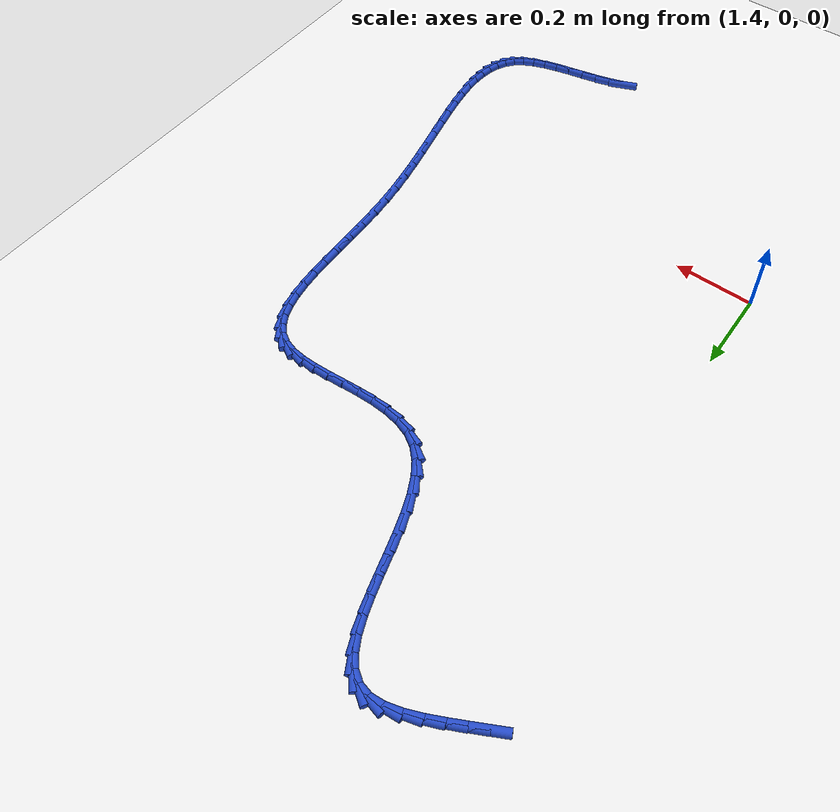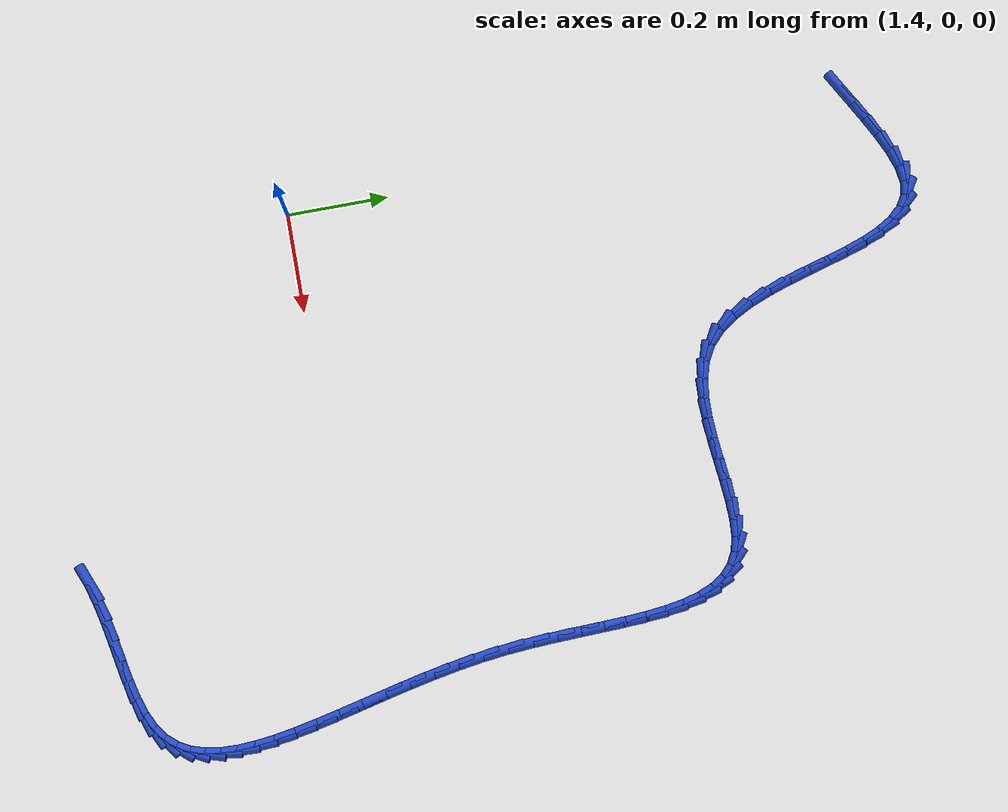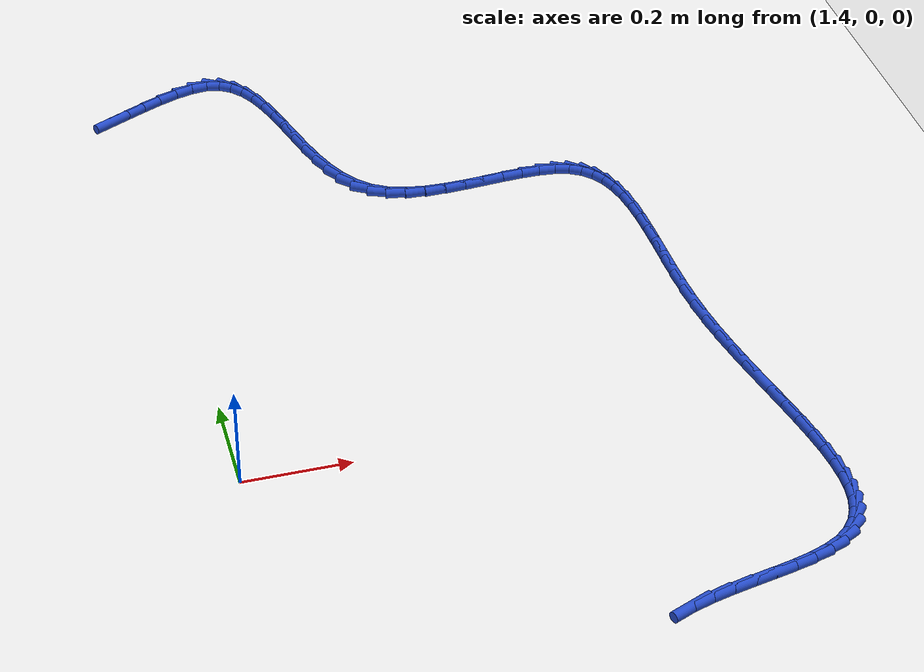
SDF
<sdf version="1.6">
 <world name="default">
  <model name="ground_plane">
   <static>1</static>
   <link name="link">
    <collision name="collision">
     <geometry><plane><normal>0 0 1</normal><size>100 100</size></plane></geometry>
     <surface><friction><ode><mu>100</mu><mu2>50</mu2></ode></friction></surface>
    </collision>
    <visual name="visual">
     <cast_shadows>0</cast_shadows>
     <geometry><plane><normal>0 0 1</normal><size>100 100</size></plane></geometry>
     <material>
      <script><uri>file://media/materials/scripts/gazebo.material</uri><name>Gazebo/WhiteGlow</name></script>
     </material>
    </visual>
   </link>
  </model>
  <model name="line">
   <link name="link_55">
    <pose>1.3496479229003844 1.1246117016467234 0.01 0 1.57 0.47023471055390703</pose>
    <collision name="collision">
     <geometry><cylinder><radius>0.01</radius><length>0.08</length></cylinder></geometry>
    </collision>
    <visual name="visual">
     <material>
      <script><name>Gazebo/Blue</name><uri>file://media/materials/scripts/gazebo.material</uri></script>
     </material>
     <geometry><cylinder><radius>0.01</radius><length>0.08</length></cylinder></geometry>
    </visual>
   </link>
   <link name="link_56">
    <pose>1.3841932074227694 1.1421697295894424 0.01 0 1.57 0.4641100833375244</pose>
    <collision name="collision">
     <geometry><cylinder><radius>0.01</radius><length>0.08</length></cylinder></geometry>
    </collision>
    <visual name="visual">
     <material>
      <script><name>Gazebo/Blue</name><uri>file://media/materials/scripts/gazebo.material</uri></script>
     </material>
     <geometry><cylinder><radius>0.01</radius><length>0.08</length></cylinder></geometry>
    </visual>
   </link>
   <link name="link_57">
    <pose>1.4198160723473592 1.160001760142285 0.01 0 1.57 0.4411880590642523</pose>
    <collision name="collision">
     <geometry><cylinder><radius>0.01</radius><length>0.08</length></cylinder></geometry>
    </collision>
    <visual name="visual">
     <material>
      <script><name>Gazebo/Blue</name><uri>file://media/materials/scripts/gazebo.material</uri></script>
     </material>
     <geometry><cylinder><radius>0.01</radius><length>0.08</length></cylinder></geometry>
    </visual>
   </link>
   <link name="link_58">
    <pose>1.4567373012334133 1.177437172259663 0.01 0 1.57 0.38779277143367824</pose>
    <collision name="collision">
     <geometry><cylinder><radius>0.01</radius><length>0.08</length></cylinder></geometry>
    </collision>
    <visual name="visual">
     <material>
      <script><name>Gazebo/Blue</name><uri>file://media/materials/scripts/gazebo.material</uri></script>
     </material>
     <geometry><cylinder><radius>0.01</radius><length>0.08</length></cylinder></geometry>
    </visual>
   </link>
   <link name="link_59">
    <pose>1.4939364080450266 1.1926321545787328 0.01 0 1.57 0.2858420872469127</pose>
    <collision name="collision">
     <geometry><cylinder><radius>0.01</radius><length>0.08</length></cylinder></geometry>
    </collision>
    <visual name="visual">
     <material>
      <script><name>Gazebo/Blue</name><uri>file://media/materials/scripts/gazebo.material</uri></script>
     </material>
     <geometry><cylinder><radius>0.01</radius><length>0.08</length></cylinder></geometry>
    </visual>
   </link>
   <link name="link_60">
    <pose>1.5297840384328139 1.2031674217117962 0.01 0 1.57 0.10466865321659184</pose>
    <collision name="collision">
     <geometry><cylinder><radius>0.01</radius><length>0.08</length></cylinder></geometry>
    </collision>
    <visual name="visual">
     <material>
      <script><name>Gazebo/Blue</name><uri>file://media/materials/scripts/gazebo.material</uri></script>
     </material>
     <geometry><cylinder><radius>0.01</radius><length>0.08</length></cylinder></geometry>
    </visual>
   </link>
   <link name="link_61">
    <pose>1.5626466423360947 1.206619722679889 0.01 0 1.57 -0.20090752166121828</pose>
    <collision name="collision">
     <geometry><cylinder><radius>0.01</radius><length>0.08</length></cylinder></geometry>
    </collision>
    <visual name="visual">
     <material>
      <script><name>Gazebo/Blue</name><uri>file://media/materials/scripts/gazebo.material</uri></script>
     </material>
     <geometry><cylinder><radius>0.01</radius><length>0.08</length></cylinder></geometry>
    </visual>
   </link>
   <link name="link_62">
    <pose>1.5910601172253214 1.2008331758100141 0.01 0 1.57 -0.556878112638074</pose>
    <collision name="collision">
     <geometry><cylinder><radius>0.01</radius><length>0.08</length></cylinder></geometry>
    </collision>
    <visual name="visual">
     <material>
      <script><name>Gazebo/Blue</name><uri>file://media/materials/scripts/gazebo.material</uri></script>
     </material>
     <geometry><cylinder><radius>0.01</radius><length>0.08</length></cylinder></geometry>
    </visual>
   </link>
   <link name="link_63">
    <pose>1.6150020444992763 1.1859267158797964 0.01 0 1.57 -0.8454522377044399</pose>
    <collision name="collision">
     <geometry><cylinder><radius>0.01</radius><length>0.08</length></cylinder></geometry>
    </collision>
    <visual name="visual">
     <material>
      <script><name>Gazebo/Blue</name><uri>file://media/materials/scripts/gazebo.material</uri></script>
     </material>
     <geometry><cylinder><radius>0.01</radius><length>0.08</length></cylinder></geometry>
    </visual>
   </link>
   <link name="link_64">
    <pose>1.63517850366277 1.1631687664301624 0.01 0 1.57 -1.042409784000581</pose>
    <collision name="collision">
     <geometry><cylinder><radius>0.01</radius><length>0.08</length></cylinder></geometry>
    </collision>
    <visual name="visual">
     <material>
      <script><name>Gazebo/Blue</name><uri>file://media/materials/scripts/gazebo.material</uri></script>
     </material>
     <geometry><cylinder><radius>0.01</radius><length>0.08</length></cylinder></geometry>
    </visual>
   </link>
   <link name="link_65">
    <pose>1.652301194533826 1.1338366192294627 0.01 0 1.57 -1.167379028693601</pose>
    <collision name="collision">
     <geometry><cylinder><radius>0.01</radius><length>0.08</length></cylinder></geometry>
    </collision>
    <visual name="visual">
     <material>
      <script><name>Gazebo/Blue</name><uri>file://media/materials/scripts/gazebo.material</uri></script>
     </material>
     <geometry><cylinder><radius>0.01</radius><length>0.08</length></cylinder></geometry>
    </visual>
   </link>
   <link name="link_66">
    <pose>1.667081816930466 1.0992075660460463 0.01 0 1.57 -1.2428327068350764</pose>
    <collision name="collision">
     <geometry><cylinder><radius>0.01</radius><length>0.08</length></cylinder></geometry>
    </collision>
    <visual name="visual">
     <material>
      <script><name>Gazebo/Blue</name><uri>file://media/materials/scripts/gazebo.material</uri></script>
     </material>
     <geometry><cylinder><radius>0.01</radius><length>0.08</length></cylinder></geometry>
    </visual>
   </link>
   <link name="link_67">
    <pose>1.6802320706707132 1.060558898648265 0.01 0 1.57 -1.2834609056424273</pose>
    <collision name="collision">
     <geometry><cylinder><radius>0.01</radius><length>0.08</length></cylinder></geometry>
    </collision>
    <visual name="visual">
     <material>
      <script><name>Gazebo/Blue</name><uri>file://media/materials/scripts/gazebo.material</uri></script>
     </material>
     <geometry><cylinder><radius>0.01</radius><length>0.08</length></cylinder></geometry>
    </visual>
   </link>
   <link name="link_68">
    <pose>1.6924636555725903 1.0191679088044683 0.01 0 1.57 -1.2972482779270065</pose>
    <collision name="collision">
     <geometry><cylinder><radius>0.01</radius><length>0.08</length></cylinder></geometry>
    </collision>
    <visual name="visual">
     <material>
      <script><name>Gazebo/Blue</name><uri>file://media/materials/scripts/gazebo.material</uri></script>
     </material>
     <geometry><cylinder><radius>0.01</radius><length>0.08</length></cylinder></geometry>
    </visual>
   </link>
   <link name="link_69">
    <pose>1.7044882714541203 0.9763118882830061 0.01 0 1.57 -1.2875393513096767</pose>
    <collision name="collision">
     <geometry><cylinder><radius>0.01</radius><length>0.08</length></cylinder></geometry>
    </collision>
    <visual name="visual">
     <material>
      <script><name>Gazebo/Blue</name><uri>file://media/materials/scripts/gazebo.material</uri></script>
     </material>
     <geometry><cylinder><radius>0.01</radius><length>0.08</length></cylinder></geometry>
    </visual>
   </link>
   <link name="link_70">
    <pose>1.7170176181333245 0.9332681288522294 0.01 0 1.57 -1.2541806238959856</pose>
    <collision name="collision">
     <geometry><cylinder><radius>0.01</radius><length>0.08</length></cylinder></geometry>
    </collision>
    <visual name="visual">
     <material>
      <script><name>Gazebo/Blue</name><uri>file://media/materials/scripts/gazebo.material</uri></script>
     </material>
     <geometry><cylinder><radius>0.01</radius><length>0.08</length></cylinder></geometry>
    </visual>
   </link>
   <link name="link_71">
    <pose>1.7307633954282269 0.8913139222804881 0.01 0 1.57 -1.1938016632790547</pose>
    <collision name="collision">
     <geometry><cylinder><radius>0.01</radius><length>0.08</length></cylinder></geometry>
    </collision>
    <visual name="visual">
     <material>
      <script><name>Gazebo/Blue</name><uri>file://media/materials/scripts/gazebo.material</uri></script>
     </material>
     <geometry><cylinder><radius>0.01</radius><length>0.08</length></cylinder></geometry>
    </visual>
   </link>
   <link name="link_72">
    <pose>1.746437303156849 0.8517265603361323 0.01 0 1.57 -1.0995629544573708</pose>
    <collision name="collision">
     <geometry><cylinder><radius>0.01</radius><length>0.08</length></cylinder></geometry>
    </collision>
    <visual name="visual">
     <material>
      <script><name>Gazebo/Blue</name><uri>file://media/materials/scripts/gazebo.material</uri></script>
     </material>
     <geometry><cylinder><radius>0.01</radius><length>0.08</length></cylinder></geometry>
    </visual>
   </link>
   <link name="link_73">
    <pose>1.7647510411372147 0.8157833347875121 0.01 0 1.57 -0.9611526923810393</pose>
    <collision name="collision">
     <geometry><cylinder><radius>0.01</radius><length>0.08</length></cylinder></geometry>
    </collision>
    <visual name="visual">
     <material>
      <script><name>Gazebo/Blue</name><uri>file://media/materials/scripts/gazebo.material</uri></script>
     </material>
     <geometry><cylinder><radius>0.01</radius><length>0.08</length></cylinder></geometry>
    </visual>
   </link>
   <link name="link_74">
    <pose>1.7864163091873455 0.7847615374029782 0.01 0 1.57 -0.767489251983084</pose>
    <collision name="collision">
     <geometry><cylinder><radius>0.01</radius><length>0.08</length></cylinder></geometry>
    </collision>
    <visual name="visual">
     <material>
      <script><name>Gazebo/Blue</name><uri>file://media/materials/scripts/gazebo.material</uri></script>
     </material>
     <geometry><cylinder><radius>0.01</radius><length>0.08</length></cylinder></geometry>
    </visual>
   </link>
   <link name="link_75">
    <pose>1.8121448071252642 0.7599384599508806 0.01 0 1.57 -0.5262528285061314</pose>
    <collision name="collision">
     <geometry><cylinder><radius>0.01</radius><length>0.08</length></cylinder></geometry>
    </collision>
    <visual name="visual">
     <material>
      <script><name>Gazebo/Blue</name><uri>file://media/materials/scripts/gazebo.material</uri></script>
     </material>
     <geometry><cylinder><radius>0.01</radius><length>0.08</length></cylinder></geometry>
    </visual>
   </link>
   <link name="link_76">
    <pose>1.842471889548279 0.7423216262222947 0.01 0 1.57 -0.31054921585594547</pose>
    <collision name="collision">
     <geometry><cylinder><radius>0.01</radius><length>0.08</length></cylinder></geometry>
    </collision>
    <visual name="visual">
     <material>
      <script><name>Gazebo/Blue</name><uri>file://media/materials/scripts/gazebo.material</uri></script>
     </material>
     <geometry><cylinder><radius>0.01</radius><length>0.08</length></cylinder></geometry>
    </visual>
   </link>
   <link name="link_77">
    <pose>1.8768643711742834 0.7312839376423638 0.01 0 1.57 -0.1506994818354576</pose>
    <collision name="collision">
     <geometry><cylinder><radius>0.01</radius><length>0.08</length></cylinder></geometry>
    </collision>
    <visual name="visual">
     <material>
      <script><name>Gazebo/Blue</name><uri>file://media/materials/scripts/gazebo.material</uri></script>
     </material>
     <geometry><cylinder><radius>0.01</radius><length>0.08</length></cylinder></geometry>
    </visual>
   </link>
   <link name="link_78">
    <pose>1.9143887084472733 0.7255858387672719 0.01 0 1.57 -0.04023668969716423</pose>
    <collision name="collision">
     <geometry><cylinder><radius>0.01</radius><length>0.08</length></cylinder></geometry>
    </collision>
    <visual name="visual">
     <material>
      <script><name>Gazebo/Blue</name><uri>file://media/materials/scripts/gazebo.material</uri></script>
     </material>
     <geometry><cylinder><radius>0.01</radius><length>0.08</length></cylinder></geometry>
    </visual>
   </link>
   <link name="link_79">
    <pose>1.9541106531050751 0.7239866961134542 0.01 0 1.57 0.030713060975538498</pose>
    <collision name="collision">
     <geometry><cylinder><radius>0.01</radius><length>0.08</length></cylinder></geometry>
    </collision>
    <visual name="visual">
     <material>
      <script><name>Gazebo/Blue</name><uri>file://media/materials/scripts/gazebo.material</uri></script>
     </material>
     <geometry><cylinder><radius>0.01</radius><length>0.08</length></cylinder></geometry>
    </visual>
   </link>
   <link name="link_80">
    <pose>1.9950959568855162 0.7252458761973456 0.01 0 1.57 0.06952132871976674</pose>
    <collision name="collision">
     <geometry><cylinder><radius>0.01</radius><length>0.08</length></cylinder></geometry>
    </collision>
    <visual name="visual">
     <material>
      <script><name>Gazebo/Blue</name><uri>file://media/materials/scripts/gazebo.material</uri></script>
     </material>
     <geometry><cylinder><radius>0.01</radius><length>0.08</length></cylinder></geometry>
    </visual>
   </link>
   <link name="link_81">
    <pose>2.0364103715264235 0.7281227455353816 0.01 0 1.57 0.07976122567753044</pose>
    <collision name="collision">
     <geometry><cylinder><radius>0.01</radius><length>0.08</length></cylinder></geometry>
    </collision>
    <visual name="visual">
     <material>
      <script><name>Gazebo/Blue</name><uri>file://media/materials/scripts/gazebo.material</uri></script>
     </material>
     <geometry><cylinder><radius>0.01</radius><length>0.08</length></cylinder></geometry>
    </visual>
   </link>
   <link name="link_82">
    <pose>2.0771196487656236 0.731376670643997 0.01 0 1.57 0.06094953654843173</pose>
    <collision name="collision">
     <geometry><cylinder><radius>0.01</radius><length>0.08</length></cylinder></geometry>
    </collision>
    <visual name="visual">
     <material>
      <script><name>Gazebo/Blue</name><uri>file://media/materials/scripts/gazebo.material</uri></script>
     </material>
     <geometry><cylinder><radius>0.01</radius><length>0.08</length></cylinder></geometry>
    </visual>
   </link>
   <link name="link_83">
    <pose>2.116289540340944 0.7337670180396269 0.01 0 1.57 0.007797263770574063</pose>
    <collision name="collision">
     <geometry><cylinder><radius>0.01</radius><length>0.08</length></cylinder></geometry>
    </collision>
    <visual name="visual">
     <material>
      <script><name>Gazebo/Blue</name><uri>file://media/materials/scripts/gazebo.material</uri></script>
     </material>
     <geometry><cylinder><radius>0.01</radius><length>0.08</length></cylinder></geometry>
    </visual>
   </link>
   <link name="link_84">
    <pose>2.152985797990211 0.7340531542387062 0.01 0 1.57 -0.09162789334053047</pose>
    <collision name="collision">
     <geometry><cylinder><radius>0.01</radius><length>0.08</length></cylinder></geometry>
    </collision>
    <visual name="visual">
     <material>
      <script><name>Gazebo/Blue</name><uri>file://media/materials/scripts/gazebo.material</uri></script>
     </material>
     <geometry><cylinder><radius>0.01</radius><length>0.08</length></cylinder></geometry>
    </visual>
   </link>
   <link name="link_85">
    <pose>2.186274173451253 0.7309944457576701 0.01 0 1.57 -0.25818791324638857</pose>
    <collision name="collision">
     <geometry><cylinder><radius>0.01</radius><length>0.08</length></cylinder></geometry>
    </collision>
    <visual name="visual">
     <material>
      <script><name>Gazebo/Blue</name><uri>file://media/materials/scripts/gazebo.material</uri></script>
     </material>
     <geometry><cylinder><radius>0.01</radius><length>0.08</length></cylinder></geometry>
    </visual>
   </link>
   <link name="link_86">
    <pose>2.2152204184618953 0.723350259112954 0.01 0 1.57 -0.505108137282745</pose>
    <collision name="collision">
     <geometry><cylinder><radius>0.01</radius><length>0.08</length></cylinder></geometry>
    </collision>
    <visual name="visual">
     <material>
      <script><name>Gazebo/Blue</name><uri>file://media/materials/scripts/gazebo.material</uri></script>
     </material>
     <geometry><cylinder><radius>0.01</radius><length>0.08</length></cylinder></geometry>
    </visual>
   </link>
   <link name="link_87">
    <pose>2.239116142775662 0.7101370287173564 0.01 0 1.57 -0.77235794175562</pose>
    <collision name="collision">
     <geometry><cylinder><radius>0.01</radius><length>0.08</length></cylinder></geometry>
    </collision>
    <visual name="visual">
     <material>
      <script><name>Gazebo/Blue</name><uri>file://media/materials/scripts/gazebo.material</uri></script>
     </material>
     <geometry><cylinder><radius>0.01</radius><length>0.08</length></cylinder></geometry>
    </visual>
   </link>
   <link name="link_88">
    <pose>2.25824516529959 0.6915005052005955 0.01 0 1.57 -1.007155816850309</pose>
    <collision name="collision">
     <geometry><cylinder><radius>0.01</radius><length>0.08</length></cylinder></geometry>
    </collision>
    <visual name="visual">
     <material>
      <script><name>Gazebo/Blue</name><uri>file://media/materials/scripts/gazebo.material</uri></script>
     </material>
     <geometry><cylinder><radius>0.01</radius><length>0.08</length></cylinder></geometry>
    </visual>
   </link>
   <link name="link_89">
    <pose>2.2731636899331837 0.667896463332109 0.01 0 1.57 -1.1897403893151393</pose>
    <collision name="collision">
     <geometry><cylinder><radius>0.01</radius><length>0.08</length></cylinder></geometry>
    </collision>
    <visual name="visual">
     <material>
      <script><name>Gazebo/Blue</name><uri>file://media/materials/scripts/gazebo.material</uri></script>
     </material>
     <geometry><cylinder><radius>0.01</radius><length>0.08</length></cylinder></geometry>
    </visual>
   </link>
   <link name="link_90">
    <pose>2.284427928139857 0.6397806864904517 0.01 0 1.57 -1.3222158271903168</pose>
    <collision name="collision">
     <geometry><cylinder><radius>0.01</radius><length>0.08</length></cylinder></geometry>
    </collision>
    <visual name="visual">
     <material>
      <script><name>Gazebo/Blue</name><uri>file://media/materials/scripts/gazebo.material</uri></script>
     </material>
     <geometry><cylinder><radius>0.01</radius><length>0.08</length></cylinder></geometry>
    </visual>
   </link>
   <link name="link_91">
    <pose>2.2925940913830236 0.607608958054178 0.01 0 1.57 -1.4148462364554462</pose>
    <collision name="collision">
     <geometry><cylinder><radius>0.01</radius><length>0.08</length></cylinder></geometry>
    </collision>
    <visual name="visual">
     <material>
      <script><name>Gazebo/Blue</name><uri>file://media/materials/scripts/gazebo.material</uri></script>
     </material>
     <geometry><cylinder><radius>0.01</radius><length>0.08</length></cylinder></geometry>
    </visual>
   </link>
   <link name="link_92">
    <pose>2.2982183911261 0.5718370614018435 0.01 0 1.57 -1.4775680002436946</pose>
    <collision name="collision">
     <geometry><cylinder><radius>0.01</radius><length>0.08</length></cylinder></geometry>
    </collision>
    <visual name="visual">
     <material>
      <script><name>Gazebo/Blue</name><uri>file://media/materials/scripts/gazebo.material</uri></script>
     </material>
     <geometry><cylinder><radius>0.01</radius><length>0.08</length></cylinder></geometry>
    </visual>
   </link>
   <link name="link_93">
    <pose>2.301857038832497 0.5329207799120032 0.01 0 1.57 -1.5177464408770602</pose>
    <collision name="collision">
     <geometry><cylinder><radius>0.01</radius><length>0.08</length></cylinder></geometry>
    </collision>
    <visual name="visual">
     <material>
      <script><name>Gazebo/Blue</name><uri>file://media/materials/scripts/gazebo.material</uri></script>
     </material>
     <geometry><cylinder><radius>0.01</radius><length>0.08</length></cylinder></geometry>
    </visual>
   </link>
   <link name="link_94">
    <pose>2.3040662459656303 0.49131589696321176 0.01 0 1.57 -1.5403302069558267</pose>
    <collision name="collision">
     <geometry><cylinder><radius>0.01</radius><length>0.08</length></cylinder></geometry>
    </collision>
    <visual name="visual">
     <material>
      <script><name>Gazebo/Blue</name><uri>file://media/materials/scripts/gazebo.material</uri></script>
     </material>
     <geometry><cylinder><radius>0.01</radius><length>0.08</length></cylinder></geometry>
    </visual>
   </link>
   <link name="link_95">
    <pose>2.3054022239889136 0.4474781959340236 0.01 0 1.57 -1.5484616377362115</pose>
    <collision name="collision">
     <geometry><cylinder><radius>0.01</radius><length>0.08</length></cylinder></geometry>
    </collision>
    <visual name="visual">
     <material>
      <script><name>Gazebo/Blue</name><uri>file://media/materials/scripts/gazebo.material</uri></script>
     </material>
     <geometry><cylinder><radius>0.01</radius><length>0.08</length></cylinder></geometry>
    </visual>
   </link>
   <link name="link_96">
    <pose>2.306421184365761 0.4018634602029947 0.01 0 1.57 -1.5439969974416188</pose>
    <collision name="collision">
     <geometry><cylinder><radius>0.01</radius><length>0.08</length></cylinder></geometry>
    </collision>
    <visual name="visual">
     <material>
      <script><name>Gazebo/Blue</name><uri>file://media/materials/scripts/gazebo.material</uri></script>
     </material>
     <geometry><cylinder><radius>0.01</radius><length>0.08</length></cylinder></geometry>
    </visual>
   </link>
   <link name="link_97">
    <pose>2.3076793385595877 0.3549274731486797 0.01 0 1.57 -1.5278625387578928</pose>
    <collision name="collision">
     <geometry><cylinder><radius>0.01</radius><length>0.08</length></cylinder></geometry>
    </collision>
    <visual name="visual">
     <material>
      <script><name>Gazebo/Blue</name><uri>file://media/materials/scripts/gazebo.material</uri></script>
     </material>
     <geometry><cylinder><radius>0.01</radius><length>0.08</length></cylinder></geometry>
    </visual>
   </link>
   <link name="link_98">
    <pose>2.309732898033806 0.30712601814963264 0.01 0 1.57 -1.5002829411154655</pose>
    <collision name="collision">
     <geometry><cylinder><radius>0.01</radius><length>0.08</length></cylinder></geometry>
    </collision>
    <visual name="visual">
     <material>
      <script><name>Gazebo/Blue</name><uri>file://media/materials/scripts/gazebo.material</uri></script>
     </material>
     <geometry><cylinder><radius>0.01</radius><length>0.08</length></cylinder></geometry>
    </visual>
   </link>
   <link name="link_99">
    <pose>2.31313807425183 0.25891487858440965 0.01 0 1.57 -1.4619666929243347</pose>
    <collision name="collision">
     <geometry><cylinder><radius>0.01</radius><length>0.08</length></cylinder></geometry>
    </collision>
    <visual name="visual">
     <material>
      <script><name>Gazebo/Blue</name><uri>file://media/materials/scripts/gazebo.material</uri></script>
     </material>
     <geometry><cylinder><radius>0.01</radius><length>0.08</length></cylinder></geometry>
    </visual>
   </link>
   <link name="link_100">
    <pose>2.3184020974398902 0.21073659841878645 0.01 0 1.57 -1.4242547817941285</pose>
    <collision name="collision">
     <geometry><cylinder><radius>0.01</radius><length>0.08</length></cylinder></geometry>
    </collision>
    <visual name="visual">
     <material>
      <script><name>Gazebo/Blue</name><uri>file://media/materials/scripts/gazebo.material</uri></script>
     </material>
     <geometry><cylinder><radius>0.01</radius><length>0.08</length></cylinder></geometry>
    </visual>
   </link>
   <link name="link_101">
    <pose>2.3254656266044678 0.16288057991208335 0.01 0 1.57 -1.394385605718914</pose>
    <collision name="collision">
     <geometry><cylinder><radius>0.01</radius><length>0.08</length></cylinder></geometry>
    </collision>
    <visual name="visual">
     <material>
      <script><name>Gazebo/Blue</name><uri>file://media/materials/scripts/gazebo.material</uri></script>
     </material>
     <geometry><cylinder><radius>0.01</radius><length>0.08</length></cylinder></geometry>
    </visual>
   </link>
   <link name="link_102">
    <pose>2.3339051329254787 0.11553778695738079 0.01 0 1.57 -1.3722073964139554</pose>
    <collision name="collision">
     <geometry><cylinder><radius>0.01</radius><length>0.08</length></cylinder></geometry>
    </collision>
    <visual name="visual">
     <material>
      <script><name>Gazebo/Blue</name><uri>file://media/materials/scripts/gazebo.material</uri></script>
     </material>
     <geometry><cylinder><radius>0.01</radius><length>0.08</length></cylinder></geometry>
    </visual>
   </link>
   <link name="link_103">
    <pose>2.3432910777943383 0.06889755902838476 0.01 0 1.57 -1.3576216953022529</pose>
    <collision name="collision">
     <geometry><cylinder><radius>0.01</radius><length>0.08</length></cylinder></geometry>
    </collision>
    <visual name="visual">
     <material>
      <script><name>Gazebo/Blue</name><uri>file://media/materials/scripts/gazebo.material</uri></script>
     </material>
     <geometry><cylinder><radius>0.01</radius><length>0.08</length></cylinder></geometry>
    </visual>
   </link>
   <link name="link_104">
    <pose>2.3531939226024665 0.023149235598802036 0.01 0 1.57 -1.3507583816197015</pose>
    <collision name="collision">
     <geometry><cylinder><radius>0.01</radius><length>0.08</length></cylinder></geometry>
    </collision>
    <visual name="visual">
     <material>
      <script><name>Gazebo/Blue</name><uri>file://media/materials/scripts/gazebo.material</uri></script>
     </material>
     <geometry><cylinder><radius>0.01</radius><length>0.08</length></cylinder></geometry>
    </visual>
   </link>
   <link name="link_105">
    <pose>2.363184128741284 -0.02151784385766107 0.01 0 1.57 -1.3520315743145743</pose>
    <collision name="collision">
     <geometry><cylinder><radius>0.01</radius><length>0.08</length></cylinder></geometry>
    </collision>
    <visual name="visual">
     <material>
      <script><name>Gazebo/Blue</name><uri>file://media/materials/scripts/gazebo.material</uri></script>
     </material>
     <geometry><cylinder><radius>0.01</radius><length>0.08</length></cylinder></geometry>
    </visual>
   </link>
   <link name="link_106">
    <pose>2.3728321576022067 -0.06491433986729882 0.01 0 1.57 -1.3622143696732134</pose>
    <collision name="collision">
     <geometry><cylinder><radius>0.01</radius><length>0.08</length></cylinder></geometry>
    </collision>
    <visual name="visual">
     <material>
      <script><name>Gazebo/Blue</name><uri>file://media/materials/scripts/gazebo.material</uri></script>
     </material>
     <geometry><cylinder><radius>0.01</radius><length>0.08</length></cylinder></geometry>
    </visual>
   </link>
   <link name="link_107">
    <pose>2.381708470576654 -0.10685091295640253 0.01 0 1.57 -1.3825440421486084</pose>
    <collision name="collision">
     <geometry><cylinder><radius>0.01</radius><length>0.08</length></cylinder></geometry>
    </collision>
    <visual name="visual">
     <material>
      <script><name>Gazebo/Blue</name><uri>file://media/materials/scripts/gazebo.material</uri></script>
     </material>
     <geometry><cylinder><radius>0.01</radius><length>0.08</length></cylinder></geometry>
    </visual>
   </link>
   <link name="link_108">
    <pose>2.389383529056046 -0.1471382236512668 0.01 0 1.57 -1.4148691024403923</pose>
    <collision name="collision">
     <geometry><cylinder><radius>0.01</radius><length>0.08</length></cylinder></geometry>
    </collision>
    <visual name="visual">
     <material>
      <script><name>Gazebo/Blue</name><uri>file://media/materials/scripts/gazebo.material</uri></script>
     </material>
     <geometry><cylinder><radius>0.01</radius><length>0.08</length></cylinder></geometry>
    </visual>
   </link>
   <link name="link_109">
    <pose>2.3954277944317997 -0.18558693247818497 0.01 0 1.57 -1.461843185353975</pose>
    <collision name="collision">
     <geometry><cylinder><radius>0.01</radius><length>0.08</length></cylinder></geometry>
    </collision>
    <visual name="visual">
     <material>
      <script><name>Gazebo/Blue</name><uri>file://media/materials/scripts/gazebo.material</uri></script>
     </material>
     <geometry><cylinder><radius>0.01</radius><length>0.08</length></cylinder></geometry>
    </visual>
   </link>
   <link name="link_110">
    <pose>2.3994117280953353 -0.22200769996345032 0.01 0 1.57 -1.5271424684044397</pose>
    <collision name="collision">
     <geometry><cylinder><radius>0.01</radius><length>0.08</length></cylinder></geometry>
    </collision>
    <visual name="visual">
     <material>
      <script><name>Gazebo/Blue</name><uri>file://media/materials/scripts/gazebo.material</uri></script>
     </material>
     <geometry><cylinder><radius>0.01</radius><length>0.08</length></cylinder></geometry>
    </visual>
   </link>
   <link name="link_111">
    <pose>2.4009057914380714 -0.25621118663335646 0.01 0 1.57 1.5259997103346477</pose>
    <collision name="collision">
     <geometry><cylinder><radius>0.01</radius><length>0.08</length></cylinder></geometry>
    </collision>
    <visual name="visual">
     <material>
      <script><name>Gazebo/Blue</name><uri>file://media/materials/scripts/gazebo.material</uri></script>
     </material>
     <geometry><cylinder><radius>0.01</radius><length>0.08</length></cylinder></geometry>
    </visual>
   </link>
   <link name="link_112">
    <pose>2.399480445851425 -0.2880080530141974 0.01 0 1.57 1.4087321417345153</pose>
    <collision name="collision">
     <geometry><cylinder><radius>0.01</radius><length>0.08</length></cylinder></geometry>
    </collision>
    <visual name="visual">
     <material>
      <script><name>Gazebo/Blue</name><uri>file://media/materials/scripts/gazebo.material</uri></script>
     </material>
     <geometry><cylinder><radius>0.01</radius><length>0.08</length></cylinder></geometry>
    </visual>
   </link>
   <link name="link_113">
    <pose>2.394706152726817 -0.31720895963226514 0.01 0 1.57 1.2576705358247269</pose>
    <collision name="collision">
     <geometry><cylinder><radius>0.01</radius><length>0.08</length></cylinder></geometry>
    </collision>
    <visual name="visual">
     <material>
      <script><name>Gazebo/Blue</name><uri>file://media/materials/scripts/gazebo.material</uri></script>
     </material>
     <geometry><cylinder><radius>0.01</radius><length>0.08</length></cylinder></geometry>
    </visual>
   </link>
   <link name="link_114">
    <pose>2.3861533734556652 -0.3436245670138537 0.01 0 1.57 1.0722778193960814</pose>
    <collision name="collision">
     <geometry><cylinder><radius>0.01</radius><length>0.08</length></cylinder></geometry>
    </collision>
    <visual name="visual">
     <material>
      <script><name>Gazebo/Blue</name><uri>file://media/materials/scripts/gazebo.material</uri></script>
     </material>
     <geometry><cylinder><radius>0.01</radius><length>0.08</length></cylinder></geometry>
    </visual>
   </link>
   <link name="link_115">
    <pose>2.373392569429389 -0.3670655356852566 0.01 0 1.57 0.8616559912688794</pose>
    <collision name="collision">
     <geometry><cylinder><radius>0.01</radius><length>0.08</length></cylinder></geometry>
    </collision>
    <visual name="visual">
     <material>
      <script><name>Gazebo/Blue</name><uri>file://media/materials/scripts/gazebo.material</uri></script>
     </material>
     <geometry><cylinder><radius>0.01</radius><length>0.08</length></cylinder></geometry>
    </visual>
   </link>
   <link name="link_116">
    <pose>2.3559942020394056 -0.3873425261727673 0.01 0 1.57 0.6456644143161796</pose>
    <collision name="collision">
     <geometry><cylinder><radius>0.01</radius><length>0.08</length></cylinder></geometry>
    </collision>
    <visual name="visual">
     <material>
      <script><name>Gazebo/Blue</name><uri>file://media/materials/scripts/gazebo.material</uri></script>
     </material>
     <geometry><cylinder><radius>0.01</radius><length>0.08</length></cylinder></geometry>
    </visual>
   </link>
   <link name="link_117">
    <pose>2.3335297653620843 -0.40426691070022713 0.01 0 1.57 0.4588223646720293</pose>
    <collision name="collision">
     <geometry><cylinder><radius>0.01</radius><length>0.08</length></cylinder></geometry>
    </collision>
    <visual name="visual">
     <material>
      <script><name>Gazebo/Blue</name><uri>file://media/materials/scripts/gazebo.material</uri></script>
     </material>
     <geometry><cylinder><radius>0.01</radius><length>0.08</length></cylinder></geometry>
    </visual>
   </link>
   <link name="link_118">
    <pose>2.3059326024535056 -0.4178994376752152 0.01 0 1.57 0.3324778596276919</pose>
    <collision name="collision">
     <geometry><cylinder><radius>0.01</radius><length>0.08</length></cylinder></geometry>
    </collision>
    <visual name="visual">
     <material>
      <script><name>Gazebo/Blue</name><uri>file://media/materials/scripts/gazebo.material</uri></script>
     </material>
     <geometry><cylinder><radius>0.01</radius><length>0.08</length></cylinder></geometry>
    </visual>
   </link>
   <link name="link_119">
    <pose>2.274028391189663 -0.4289158276745936 0.01 0 1.57 0.2544735737709964</pose>
    <collision name="collision">
     <geometry><cylinder><radius>0.01</radius><length>0.08</length></cylinder></geometry>
    </collision>
    <visual name="visual">
     <material>
      <script><name>Gazebo/Blue</name><uri>file://media/materials/scripts/gazebo.material</uri></script>
     </material>
     <geometry><cylinder><radius>0.01</radius><length>0.08</length></cylinder></geometry>
    </visual>
   </link>
   <link name="link_120">
    <pose>2.238777925798581 -0.43808491968129265 0.01 0 1.57 0.21174845388496458</pose>
    <collision name="collision">
     <geometry><cylinder><radius>0.01</radius><length>0.08</length></cylinder></geometry>
    </collision>
    <visual name="visual">
     <material>
      <script><name>Gazebo/Blue</name><uri>file://media/materials/scripts/gazebo.material</uri></script>
     </material>
     <geometry><cylinder><radius>0.01</radius><length>0.08</length></cylinder></geometry>
    </visual>
   </link>
   <link name="link_121">
    <pose>2.2011420005082774 -0.44617555267824266 0.01 0 1.57 0.19662973829270455</pose>
    <collision name="collision">
     <geometry><cylinder><radius>0.01</radius><length>0.08</length></cylinder></geometry>
    </collision>
    <visual name="visual">
     <material>
      <script><name>Gazebo/Blue</name><uri>file://media/materials/scripts/gazebo.material</uri></script>
     </material>
     <geometry><cylinder><radius>0.01</radius><length>0.08</length></cylinder></geometry>
    </visual>
   </link>
   <link name="link_122">
    <pose>2.1620814095467735 -0.45395656564837433 0.01 0 1.57 0.20554012136288682</pose>
    <collision name="collision">
     <geometry><cylinder><radius>0.01</radius><length>0.08</length></cylinder></geometry>
    </collision>
    <visual name="visual">
     <material>
      <script><name>Gazebo/Blue</name><uri>file://media/materials/scripts/gazebo.material</uri></script>
     </material>
     <geometry><cylinder><radius>0.01</radius><length>0.08</length></cylinder></geometry>
    </visual>
   </link>
   <link name="link_123">
    <pose>2.122556947142088 -0.4621967975746177 0.01 0 1.57 0.23800697407244245</pose>
    <collision name="collision">
     <geometry><cylinder><radius>0.01</radius><length>0.08</length></cylinder></geometry>
    </collision>
    <visual name="visual">
     <material>
      <script><name>Gazebo/Blue</name><uri>file://media/materials/scripts/gazebo.material</uri></script>
     </material>
     <geometry><cylinder><radius>0.01</radius><length>0.08</length></cylinder></geometry>
    </visual>
   </link>
   <link name="link_124">
    <pose>2.083529407522242 -0.4716650874399033 0.01 0 1.57 0.2961932367032305</pose>
    <collision name="collision">
     <geometry><cylinder><radius>0.01</radius><length>0.08</length></cylinder></geometry>
    </collision>
    <visual name="visual">
     <material>
      <script><name>Gazebo/Blue</name><uri>file://media/materials/scripts/gazebo.material</uri></script>
     </material>
     <geometry><cylinder><radius>0.01</radius><length>0.08</length></cylinder></geometry>
    </visual>
   </link>
   <link name="link_125">
    <pose>2.0459595849152556 -0.48313027422716215 0.01 0 1.57 0.3846783115529936</pose>
    <collision name="collision">
     <geometry><cylinder><radius>0.01</radius><length>0.08</length></cylinder></geometry>
    </collision>
    <visual name="visual">
     <material>
      <script><name>Gazebo/Blue</name><uri>file://media/materials/scripts/gazebo.material</uri></script>
     </material>
     <geometry><cylinder><radius>0.01</radius><length>0.08</length></cylinder></geometry>
    </visual>
   </link>
  </model>
 </world>
</sdf>
